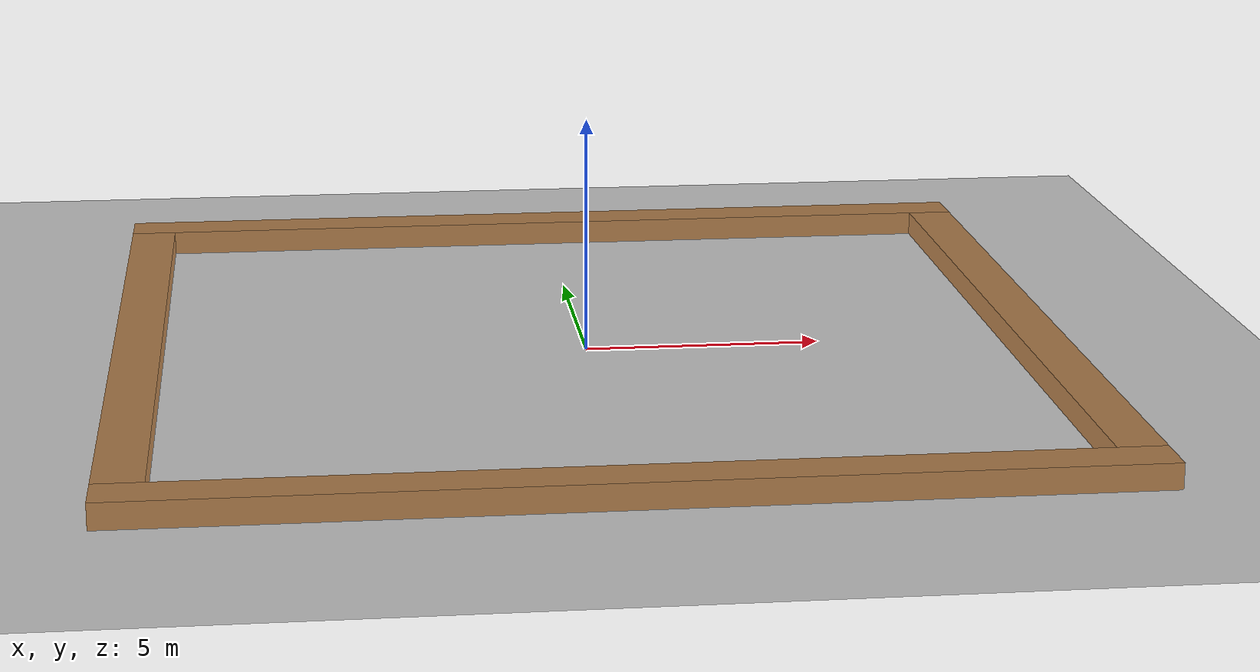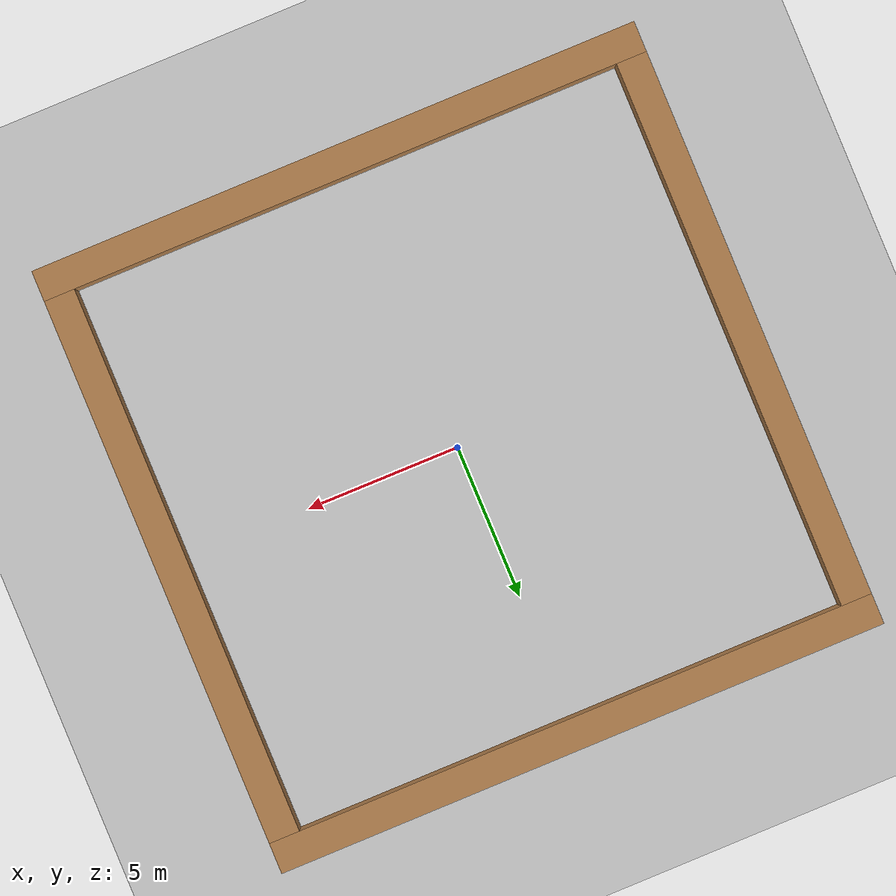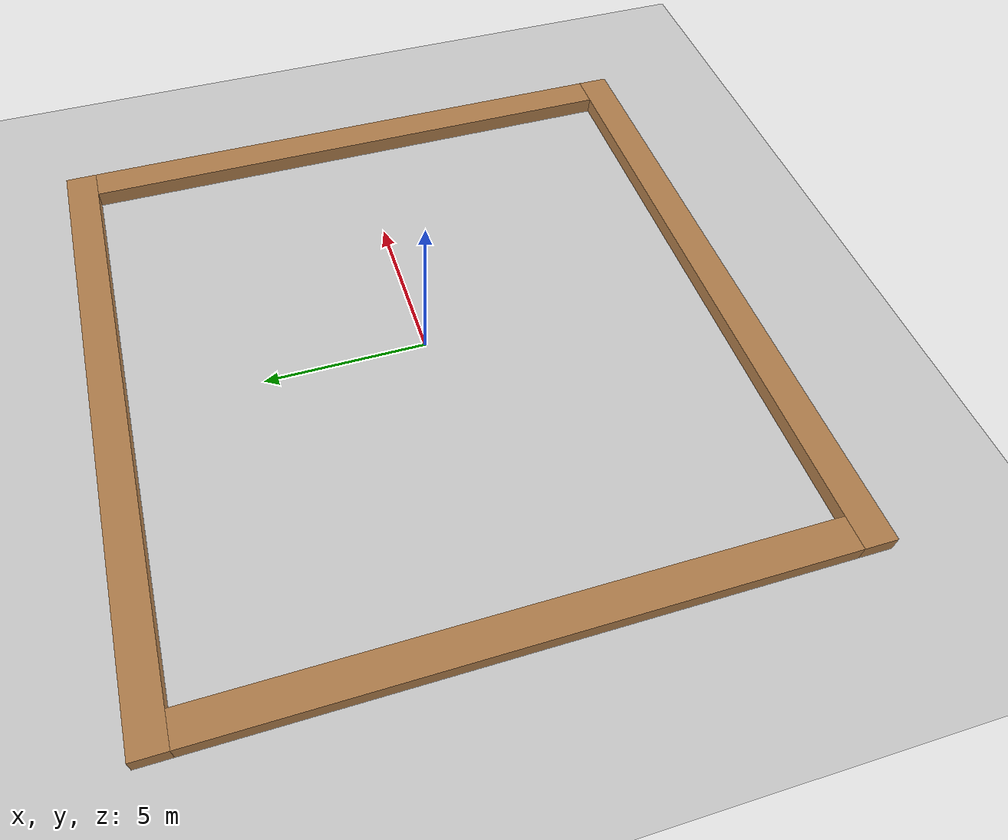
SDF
<?xml version="1.0" ?>
<sdf version="1.4">
  <world name="default">
    <include>
      <uri>model://ground_plane</uri>
    </include>

    <!-- Global light source -->
    <include>
      <uri>model://sun</uri>
    </include>

    <!-- Focus camera on tall pendulum -->
    <gui fullscreen='0'>
      <camera name='user_camera'>
        <pose>4.927360 -4.376610 3.740080 0.000000 0.275643 2.356190</pose>
        <view_controller>orbit</view_controller>
      </camera>
    </gui>

<model name="left">
    <link name="link">
      <pose>0 -9.5 0 0 0 0</pose>
      <inertial>
        <mass>50</mass>
        <inertia>
          <ixx>8.3333</ixx>
          <ixy>0</ixy>
          <ixz>0</ixz>
          <iyy>1671</iyy>
          <iyz>0</iyz>
          <izz>1671</izz>
        </inertia>
      </inertial>

      <collision name="collision">
        <geometry>
          <box>
            <size>20 1 1</size>
          </box>
        </geometry>
        <max_contacts>10</max_contacts>
          <surface>
            <contact>
              <ode/>
            </contact>
            <bounce/>
            <friction>
              <torsional>
                <ode/>
              </torsional>
              <ode/>
            </friction>
          </surface>
      </collision>

      <visual name="visual">
        <geometry>
          <box>
            <size>20 1 1</size>
          </box>
        </geometry>
        <material>
          <script>
            <uri>file://media/materials/scripts/gazebo.material</uri>
            <name>Gazebo/Wood</name>
          </script>
        </material>
      </visual>

    </link>
  </model>

<model name="right">
    <link name="link">
      <pose>0 9.5 0 0 0 0</pose>
      <inertial>
        <mass>50</mass>
        <inertia>
          <ixx>8.3333</ixx>
          <ixy>0</ixy>
          <ixz>0</ixz>
          <iyy>1671</iyy>
          <iyz>0</iyz>
          <izz>1671</izz>
        </inertia>
      </inertial>

      <collision name="collision">
        <geometry>
          <box>
            <size>20 1 1</size>
          </box>
        </geometry>
        <max_contacts>10</max_contacts>
          <surface>
            <contact>
              <ode/>
            </contact>
            <bounce/>
            <friction>
              <torsional>
                <ode/>
              </torsional>
              <ode/>
            </friction>
          </surface>
      </collision>

      <visual name="visual">
        <geometry>
          <box>
            <size>20 1 1</size>
          </box>
        </geometry>
        <material>
          <script>
            <uri>file://media/materials/scripts/gazebo.material</uri>
            <name>Gazebo/Wood</name>
          </script>
        </material>
      </visual>

    </link>
  </model>
<model name="east">
    <link name="link">
      <pose>-9.5 0 0 0 0 0</pose>
      <inertial>
        <mass>50</mass>
        <inertia>
          <ixx>1354.2</ixx>
          <ixy>0</ixy>
          <ixz>0</ixz>
          <iyy>8.3333</iyy>
          <iyz>0</iyz>
          <izz>1354.2</izz>
        </inertia>
      </inertial>

      <collision name="collision">
        <geometry>
          <box>
            <size>1 18 1</size>
          </box>
        </geometry>
        <max_contacts>10</max_contacts>
          <surface>
            <contact>
              <ode/>
            </contact>
            <bounce/>
            <friction>
              <torsional>
                <ode/>
              </torsional>
              <ode/>
            </friction>
          </surface>
      </collision>

      <visual name="visual">
        <geometry>
          <box>
            <size>1 18 1</size>
          </box>
        </geometry>
        <material>
          <script>
            <uri>file://media/materials/scripts/gazebo.material</uri>
            <name>Gazebo/Wood</name>
          </script>
        </material>
      </visual>

    </link>
  </model>
<model name="west">
    <link name="link">
      <pose>9.5 0 0 0 0 0</pose>
      <inertial>
        <mass>50</mass>
        <inertia>
          <ixx>1354.2</ixx>
          <ixy>0</ixy>
          <ixz>0</ixz>
          <iyy>8.333</iyy>
          <iyz>0</iyz>
          <izz>1354.2</izz>
        </inertia>
      </inertial>

      <collision name="collision">
        <geometry>
          <box>
            <size>1 18 1</size>
          </box>
        </geometry>
        <max_contacts>10</max_contacts>
          <surface>
            <contact>
              <ode/>
            </contact>
            <bounce/>
            <friction>
              <torsional>
                <ode/>
              </torsional>
              <ode/>
            </friction>
          </surface>
      </collision>

      <visual name="visual">
        <geometry>
          <box>
            <size>1 18 1</size>
          </box>
        </geometry>
        <material>
          <script>
            <uri>file://media/materials/scripts/gazebo.material</uri>
            <name>Gazebo/Wood</name>
          </script>
        </material>
      </visual>

    </link>
  </model>

  </world>
</sdf>
